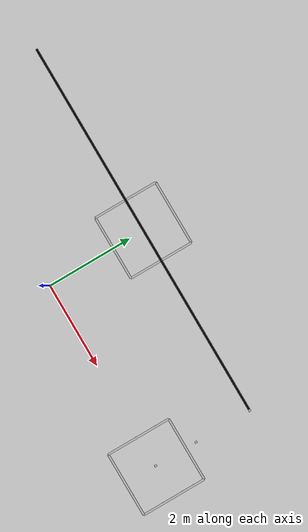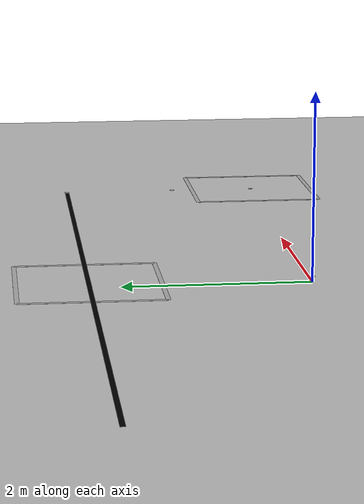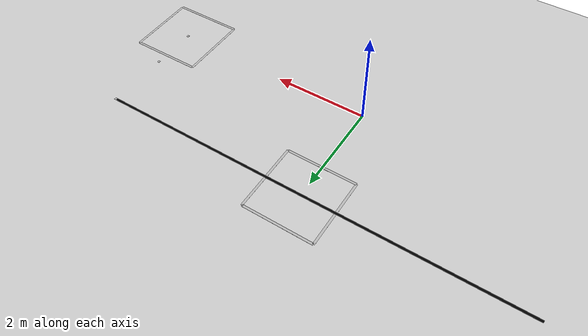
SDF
<sdf version="1.7">
 <world name="default">
  <model name="ground_plane">
   <static>1</static>
   <link name="link">
    <collision name="collision">
     <geometry><plane><normal>0 0 1</normal><size>100 100</size></plane></geometry>
    </collision>
    <visual name="visual">
     <geometry><plane><normal>0 0 1</normal><size>100 100</size></plane></geometry>
     <material>
      <script><name>Gazebo/Grey</name><uri>file://media/materials/scripts/gazebo.material</uri></script>
     </material>
    </visual>
   </link>
  </model>
  <model name="black_line_clone">
   <static>1</static>
   <pose>0 2.33333 0.06 0 -0 0</pose>
   <link name="line_link">
    <visual name="line_visual">
     <geometry><box><size>9 0.05 0.001</size></box></geometry>
     <material><ambient>0 0 0 1</ambient><diffuse>0 0 0 1</diffuse></material>
    </visual>
   </link>
  </model>
  <model name="qr_code_station_1_right">
   <pose>4.475 1 0.061 0 -0 0</pose>
   <link name="link_0">
    <visual name="visual">
     <geometry><box><size>0.05 0.05 0.001</size></box></geometry>
     <material>
      <lighting>1</lighting>
      <script>
       <uri>model://qr_code/materials/scripts</uri>
       <uri>model://qr_code/materials/textures</uri>
       <name>station_1_right</name>
      </script>
      <shader type="pixel"/>
     </material>
    </visual>
   </link>
   <static>1</static>
  </model>
  <model name="qr_code_station_1_center">
   <pose>4.475 0 0.061 0 -0 0</pose>
   <link name="link_0">
    <visual name="visual">
     <geometry><box><size>0.05 0.05 0.001</size></box></geometry>
     <material>
      <lighting>1</lighting>
      <script>
       <uri>model://qr_code/materials/scripts</uri>
       <uri>model://qr_code/materials/textures</uri>
       <name>station_1_center</name>
      </script>
      <shader type="pixel"/>
     </material>
    </visual>
   </link>
   <static>1</static>
  </model>
  <model name="qr_code_center">
   <pose>0 0 0.061 0 -0 0</pose>
   <link name="link_0">
    <visual name="visual">
     <geometry><box><size>0.05 0.05 0.001</size></box></geometry>
     <material>
      <lighting>1</lighting>
      <script>
       <uri>model://qr_code/materials/scripts</uri>
       <uri>model://qr_code/materials/textures</uri>
       <name>center</name>
      </script>
      <shader type="pixel"/>
     </material>
    </visual>
   </link>
   <static>1</static>
  </model>
  <model name="qr_code_intersection_zone_b_station_1">
   <pose>4.475 2.333 0.061 0 -0 0</pose>
   <link name="link_0">
    <visual name="visual">
     <geometry><box><size>0.05 0.05 0.001</size></box></geometry>
     <material>
      <lighting>1</lighting>
      <script>
       <uri>model://qr_code/materials/scripts</uri>
       <uri>model://qr_code/materials/textures</uri>
       <name>intersection_zone_b_station_1</name>
      </script>
      <shader type="pixel"/>
     </material>
    </visual>
   </link>
   <static>1</static>
  </model>
  <model name="charging_station_safety_clone_0">
   <link name="left_side">
    <pose>-0.75 0 0 0 -0 0</pose>
    <visual name="left_side_visual">
     <geometry><box><size>0.05 1.5 0.001</size></box></geometry>
     <material>
      <script>
       <uri>model://charging_station/materials/scripts</uri>
       <uri>model://charging_station/materials/textures</uri>
       <name>safety_tape_texture</name>
      </script>
     </material>
    </visual>
   </link>
   <link name="bottom_side">
    <pose>0 -0.75 0 0 -0 0</pose>
    <visual name="bottom_side_visual">
     <geometry><box><size>1.5 0.05 0.001</size></box></geometry>
     <material>
      <script>
       <uri>model://charging_station/materials/scripts</uri>
       <uri>model://charging_station/materials/textures</uri>
       <name>safety_tape_texture</name>
      </script>
     </material>
    </visual>
   </link>
   <link name="right_side">
    <pose>0.75 0 0 0 -0 0</pose>
    <visual name="right_side_visual">
     <geometry><box><size>0.05 1.5 0.001</size></box></geometry>
     <material>
      <script>
       <uri>model://charging_station/materials/scripts</uri>
       <uri>model://charging_station/materials/textures</uri>
       <name>safety_tape_texture</name>
      </script>
     </material>
    </visual>
   </link>
   <link name="top_side">
    <pose>0 0.75 0 0 -0 0</pose>
    <visual name="top_side_visual">
     <geometry><box><size>1.5 0.05 0.001</size></box></geometry>
     <material>
      <script>
       <uri>model://charging_station/materials/scripts</uri>
       <uri>model://charging_station/materials/textures</uri>
       <name>safety_tape_texture</name>
      </script>
     </material>
    </visual>
   </link>
   <static>1</static>
   <pose>0 2.333 0.0596 0 -0 0</pose>
  </model>
  <model name="charging_station_safety_clone_3">
   <link name="left_side">
    <pose>-0.75 0 0 0 -0 0</pose>
    <visual name="left_side_visual">
     <geometry><box><size>0.05 1.5 0.001</size></box></geometry>
     <material>
      <script>
       <uri>model://charging_station/materials/scripts</uri>
       <uri>model://charging_station/materials/textures</uri>
       <name>safety_tape_texture</name>
      </script>
     </material>
    </visual>
   </link>
   <link name="bottom_side">
    <pose>0 -0.75 0 0 -0 0</pose>
    <visual name="bottom_side_visual">
     <geometry><box><size>1.5 0.05 0.001</size></box></geometry>
     <material>
      <script>
       <uri>model://charging_station/materials/scripts</uri>
       <uri>model://charging_station/materials/textures</uri>
       <name>safety_tape_texture</name>
      </script>
     </material>
    </visual>
   </link>
   <link name="right_side">
    <pose>0.75 0 0 0 -0 0</pose>
    <visual name="right_side_visual">
     <geometry><box><size>0.05 1.5 0.001</size></box></geometry>
     <material>
      <script>
       <uri>model://charging_station/materials/scripts</uri>
       <uri>model://charging_station/materials/textures</uri>
       <name>safety_tape_texture</name>
      </script>
     </material>
    </visual>
   </link>
   <link name="top_side">
    <pose>0 0.75 0 0 -0 0</pose>
    <visual name="top_side_visual">
     <geometry><box><size>1.5 0.05 0.001</size></box></geometry>
     <material>
      <script>
       <uri>model://charging_station/materials/scripts</uri>
       <uri>model://charging_station/materials/textures</uri>
       <name>safety_tape_texture</name>
      </script>
     </material>
    </visual>
   </link>
   <static>1</static>
   <pose>4.5 0 0.0596 0 -0 0</pose>
  </model>
 </world>
</sdf>
